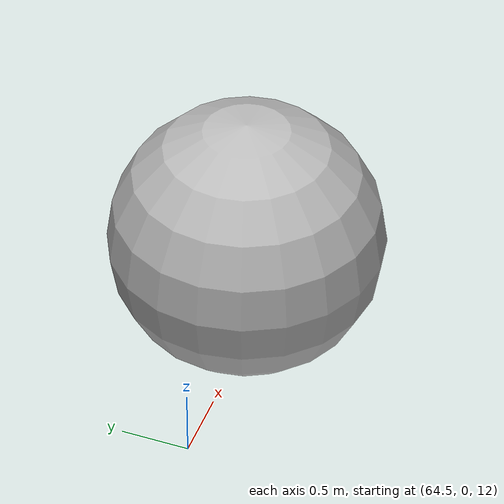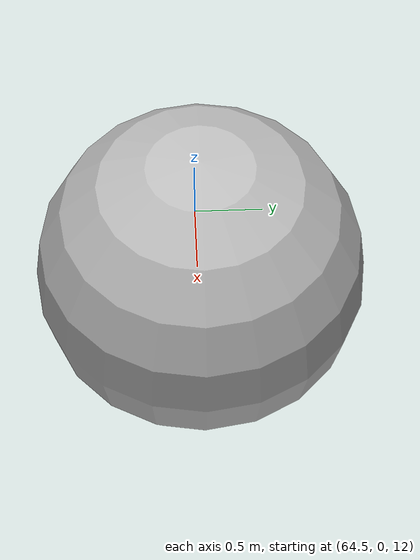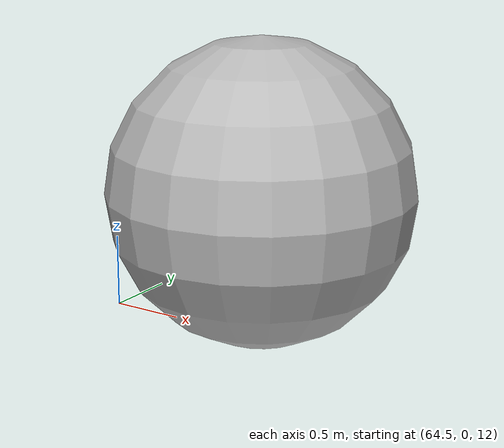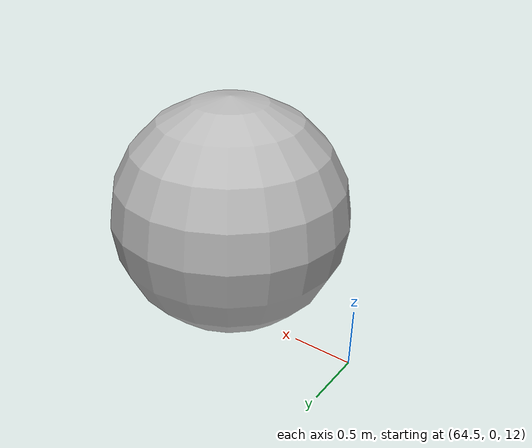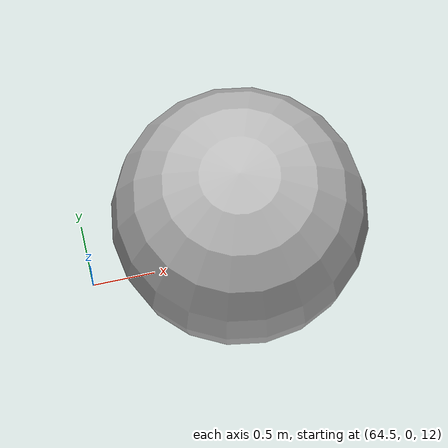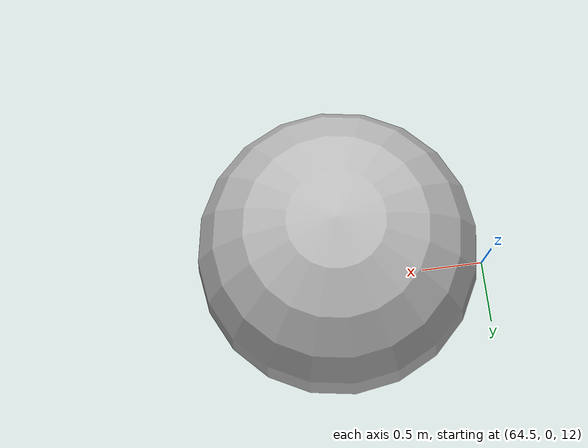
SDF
<?xml version="1.0" ?>

<sdf version="1.7">
  <world name="Garden">
    <!-- gravity of the moon -->
    <gravity>0 0 -1.62</gravity>

    <scene>
      <ambient>0.0 0.0 0.0 0.0</ambient>
      <background>0.0 0.0 0.0 1.0</background>
      <grid>false</grid>
    </scene>

    <plugin
      filename="gz-sim-physics-system"
      name="gz::sim::systems::Physics">
    </plugin>
    <plugin
      filename="gz-sim-sensors-system"
      name="gz::sim::systems::Sensors">
      <render_engine>ogre2</render_engine>
    </plugin>
    <plugin
      filename="gz-sim-user-commands-system"
      name="gz::sim::systems::UserCommands">
    </plugin>
    <plugin
      filename="gz-sim-scene-broadcaster-system"
      name="gz::sim::systems::SceneBroadcaster">
    </plugin>

    <gui fullscreen="0">
      <!-- 3D scene -->
      <plugin filename="MinimalScene" name="3D View">
        <gz-gui>
          <title>3D View</title>
          <property type="bool" key="showTitleBar">false</property>
          <property type="string" key="state">docked</property>
        </gz-gui>

        <engine>ogre2</engine>
        <scene>scene</scene>
        <ambient_light>0.0 0.0 0.0</ambient_light>
        <background_color>0.0 0.0 0.0</background_color>
        <camera_pose>-122.595329 247.122665 140.111526 0 0.570824 -1.096719</camera_pose>
        <camera_clip>
          <near>0.25</near>
          <far>1000000</far>
        </camera_clip>
      </plugin>

      <!-- Plugins that add functionality to the scene -->
      <plugin filename="EntityContextMenuPlugin" name="Entity context menu">
        <gz-gui>
          <property key="state" type="string">floating</property>
          <property key="width" type="double">5</property>
          <property key="height" type="double">5</property>
          <property key="showTitleBar" type="bool">false</property>
        </gz-gui>
      </plugin>
      <plugin filename="GzSceneManager" name="Scene Manager">
        <gz-gui>
          <property key="resizable" type="bool">false</property>
          <property key="width" type="double">5</property>
          <property key="height" type="double">5</property>
          <property key="state" type="string">floating</property>
          <property key="showTitleBar" type="bool">false</property>
        </gz-gui>
      </plugin>
      <plugin filename="InteractiveViewControl" name="Interactive view control">
        <gz-gui>
          <property key="resizable" type="bool">false</property>
          <property key="width" type="double">5</property>
          <property key="height" type="double">5</property>
          <property key="state" type="string">floating</property>
          <property key="showTitleBar" type="bool">false</property>
        </gz-gui>
      </plugin>
      <plugin filename="CameraTracking" name="Camera Tracking">
        <gz-gui>
          <property key="resizable" type="bool">false</property>
          <property key="width" type="double">5</property>
          <property key="height" type="double">5</property>
          <property key="state" type="string">floating</property>
          <property key="showTitleBar" type="bool">false</property>
        </gz-gui>
      </plugin>
      <plugin filename="MarkerManager" name="Marker manager">
        <gz-gui>
          <property key="resizable" type="bool">false</property>
          <property key="width" type="double">5</property>
          <property key="height" type="double">5</property>
          <property key="state" type="string">floating</property>
          <property key="showTitleBar" type="bool">false</property>
        </gz-gui>
      </plugin>
      <plugin filename="SelectEntities" name="Select Entities">
        <gz-gui>
          <anchors target="Select entities">
            <line own="right" target="right"/>
            <line own="top" target="top"/>
          </anchors>
          <property key="resizable" type="bool">false</property>
          <property key="width" type="double">5</property>
          <property key="height" type="double">5</property>
          <property key="state" type="string">floating</property>
          <property key="showTitleBar" type="bool">false</property>
        </gz-gui>
      </plugin>
      <plugin filename="VisualizationCapabilities" name="Visualization Capabilities">
        <gz-gui>
          <property key="resizable" type="bool">false</property>
          <property key="width" type="double">5</property>
          <property key="height" type="double">5</property>
          <property key="state" type="string">floating</property>
          <property key="showTitleBar" type="bool">false</property>
        </gz-gui>
      </plugin>

      <plugin filename="Spawn" name="Spawn Entities">
        <gz-gui>
          <anchors target="Select entities">
            <line own="right" target="right"/>
            <line own="top" target="top"/>
          </anchors>
          <property key="resizable" type="bool">false</property>
          <property key="width" type="double">5</property>
          <property key="height" type="double">5</property>
          <property key="state" type="string">floating</property>
          <property key="showTitleBar" type="bool">false</property>
        </gz-gui>
      </plugin>

      <!-- World control -->
      <plugin filename="WorldControl" name="World control">
        <gz-gui>
          <title>World control</title>
          <property type="bool" key="showTitleBar">false</property>
          <property type="bool" key="resizable">false</property>
          <property type="double" key="height">72</property>
          <property type="double" key="width">121</property>
          <property type="double" key="z">1</property>

          <property type="string" key="state">floating</property>
          <anchors target="3D View">
            <line own="left" target="left"/>
            <line own="bottom" target="bottom"/>
          </anchors>
        </gz-gui>

        <play_pause>true</play_pause>
        <step>true</step>
        <start_paused>true</start_paused>
        <use_event>true</use_event>

      </plugin>

      <!-- World statistics -->
      <plugin filename="WorldStats" name="World stats">
        <gz-gui>
          <title>World stats</title>
          <property type="bool" key="showTitleBar">false</property>
          <property type="bool" key="resizable">false</property>
          <property type="double" key="height">110</property>
          <property type="double" key="width">290</property>
          <property type="double" key="z">1</property>

          <property type="string" key="state">floating</property>
          <anchors target="3D View">
            <line own="right" target="right"/>
            <line own="bottom" target="bottom"/>
          </anchors>
        </gz-gui>

        <sim_time>true</sim_time>
        <real_time>true</real_time>
        <real_time_factor>true</real_time_factor>
        <iterations>true</iterations>
      </plugin>

      <!-- Insert simple shapes -->
      <plugin filename="Shapes" name="Shapes">
        <gz-gui>
          <property key="resizable" type="bool">false</property>
          <property key="x" type="double">0</property>
          <property key="y" type="double">0</property>
          <property key="width" type="double">250</property>
          <property key="height" type="double">50</property>
          <property key="state" type="string">floating</property>
          <property key="showTitleBar" type="bool">false</property>
          <property key="cardBackground" type="string">#666666</property>
        </gz-gui>
      </plugin>

      <!-- Insert lights -->
      <plugin filename="Lights" name="Lights">
        <gz-gui>
          <property key="resizable" type="bool">false</property>
          <property key="x" type="double">250</property>
          <property key="y" type="double">0</property>
          <property key="width" type="double">150</property>
          <property key="height" type="double">50</property>
          <property key="state" type="string">floating</property>
          <property key="showTitleBar" type="bool">false</property>
          <property key="cardBackground" type="string">#666666</property>
        </gz-gui>
      </plugin>

      <!-- Translate / rotate -->
      <plugin filename="TransformControl" name="Transform control">
        <gz-gui>
          <property key="resizable" type="bool">false</property>
          <property key="x" type="double">0</property>
          <property key="y" type="double">50</property>
          <property key="width" type="double">250</property>
          <property key="height" type="double">50</property>
          <property key="state" type="string">floating</property>
          <property key="showTitleBar" type="bool">false</property>
          <property key="cardBackground" type="string">#777777</property>
        </gz-gui>
      </plugin>

      <!-- Screenshot -->
      <plugin filename="Screenshot" name="Screenshot">
        <gz-gui>
          <property key="resizable" type="bool">false</property>
          <property key="x" type="double">250</property>
          <property key="y" type="double">50</property>
          <property key="width" type="double">50</property>
          <property key="height" type="double">50</property>
          <property key="state" type="string">floating</property>
          <property key="showTitleBar" type="bool">false</property>
          <property key="cardBackground" type="string">#777777</property>
        </gz-gui>
      </plugin>

      <!-- Video recorder -->
      <plugin filename="VideoRecorder" name="VideoRecorder">
        <gz-gui>
          <property key="resizable" type="bool">false</property>
          <property key="x" type="double">300</property>
          <property key="y" type="double">50</property>
          <property key="width" type="double">50</property>
          <property key="height" type="double">50</property>
          <property key="state" type="string">floating</property>
          <property key="showTitleBar" type="bool">false</property>
          <property key="cardBackground" type="string">#777777</property>
        </gz-gui>

        <record_video>
          <use_sim_time>true</use_sim_time>
          <lockstep>true</lockstep>
          <bitrate>4000000</bitrate>
        </record_video>
      </plugin>

      <plugin filename="KeyPublisher" name="Key publisher">
        <gz-gui>
          <anchors target="3D View">
            <line own="right" target="right"/>
            <line own="top" target="top"/>
          </anchors>
          <property key="resizable" type="bool">false</property>
          <property key="width" type="double">5</property>
          <property key="height" type="double">5</property>
          <property key="state" type="string">floating</property>
          <property key="showTitleBar" type="bool">false</property>
        </gz-gui>
      </plugin>
    </gui>

    <light type="directional" name="sun">
      <cast_shadows>true</cast_shadows>
      <pose>0 0 10 0 0 0</pose>
      <diffuse>0.8 0.8 0.8 1</diffuse>
      <specular>0.05 0.05 0.05 1</specular>
      <direction>-1 0.0 -0.4</direction>
      <visualize>false</visualize>
    </light>

    <light type="spot" name="dome_light">
      <cast_shadows>false</cast_shadows>
      <pose>0 0 50 0 0 0</pose>
      <diffuse>0.8 0.8 0.8 1</diffuse>
      <specular>0.8 0.8 0.8 1</specular>
      <attenuation>
        <range>110</range>
        <constant>0.0</constant>
        <linear>0.001</linear>
        <quadratic>0.0001</quadratic>
      </attenuation>
      <spot>
        <inner_angle>2.9</inner_angle>
        <outer_angle>3.1</outer_angle>
        <falloff>0.0</falloff>
      </spot>
      <direction>0 0.0 -1</direction>
      <visualize>false</visualize>
    </light>

    <light type="spot" name="dome_light_01">
      <cast_shadows>false</cast_shadows>
      <pose>0 45 30 0 0 0</pose>
      <diffuse>0.8 0.8 0.8 1</diffuse>
      <specular>0.8 0.8 0.8 1</specular>
      <attenuation>
        <range>70</range>
        <constant>0.2</constant>
        <linear>0.017</linear>
        <quadratic>0.0001</quadratic>
      </attenuation>
      <spot>
        <inner_angle>2.0</inner_angle>
        <outer_angle>2.5</outer_angle>
        <falloff>0.6</falloff>
      </spot>
      <direction>0 0.0 -1</direction>
      <visualize>false</visualize>
    </light>

    <light type="spot" name="dome_light_02">
      <cast_shadows>false</cast_shadows>
      <pose>0 -45 30 0 0 0</pose>
      <diffuse>0.8 0.8 0.8 1</diffuse>
      <specular>0.8 0.8 0.8 1</specular>
      <attenuation>
        <range>70</range>
        <constant>0.2</constant>
        <linear>0.017</linear>
        <quadratic>0.0001</quadratic>
      </attenuation>
      <spot>
        <inner_angle>2.0</inner_angle>
        <outer_angle>2.5</outer_angle>
        <falloff>0.6</falloff>
      </spot>
      <direction>0 0.0 -1</direction>
      <visualize>false</visualize>
    </light>

    <light type="spot" name="dome_light_03">
      <cast_shadows>false</cast_shadows>
      <pose>45 0 30 0 0 0</pose>
      <diffuse>0.8 0.8 0.8 1</diffuse>
      <specular>0.8 0.8 0.8 1</specular>
      <attenuation>
        <range>70</range>
        <constant>0.2</constant>
        <linear>0.017</linear>
        <quadratic>0.0001</quadratic>
      </attenuation>
      <spot>
        <inner_angle>2.0</inner_angle>
        <outer_angle>2.5</outer_angle>
        <falloff>0.6</falloff>
      </spot>
      <direction>0 0.0 -1</direction>
      <visualize>false</visualize>
    </light>

    <light type="spot" name="dome_light_04">
      <cast_shadows>false</cast_shadows>
      <pose>-45 0 30 0 0 0</pose>
      <diffuse>0.8 0.8 0.8 1</diffuse>
      <specular>0.8 0.8 0.8 1</specular>
      <attenuation>
        <range>70</range>
        <constant>0.2</constant>
        <linear>0.017</linear>
        <quadratic>0.0001</quadratic>
      </attenuation>
      <spot>
        <inner_angle>2.0</inner_angle>
        <outer_angle>2.5</outer_angle>
        <falloff>0.6</falloff>
      </spot>
      <direction>0 0.0 -1</direction>
      <visualize>false</visualize>
    </light>

    <light type="spot" name="tunnel_light_01">
      <cast_shadows>false</cast_shadows>
      <pose>0.2841 98.4191 10 0 0 0</pose>
      <diffuse>0.8 0.8 0.8 1</diffuse>
      <specular>0.8 0.8 0.8 1</specular>
      <attenuation>
        <range>10</range>
        <constant>0.2</constant>
        <linear>0.2517</linear>
        <quadratic>0.0001</quadratic>
      </attenuation>
      <spot>
        <inner_angle>0.0</inner_angle>
        <outer_angle>2.5</outer_angle>
        <falloff>0.6</falloff>
      </spot>
      <direction>0 0.0 -1</direction>
      <visualize>false</visualize>
    </light>

    <light type="spot" name="tunnel_light_02">
      <cast_shadows>false</cast_shadows>
      <pose>-0.0615 110.8810 7.8431 0 0 0</pose>
      <diffuse>0.8 0.8 0.8 1</diffuse>
      <specular>0.8 0.8 0.8 1</specular>
      <attenuation>
        <range>8</range>
        <constant>0.2</constant>
        <linear>0.2517</linear>
        <quadratic>0.0001</quadratic>
      </attenuation>
      <spot>
        <inner_angle>0.0</inner_angle>
        <outer_angle>2.5</outer_angle>
        <falloff>0.6</falloff>
      </spot>
      <direction>0 0.0 -1</direction>
      <visualize>false</visualize>
    </light>

    <include>
  <uri>model://ground_plane</uri>
  <name>custom_ground_plane</name>
  <pose>0 0 0 0 0 0</pose>
  <link name="link">
    <visual name="visual">
      <geometry>
        <plane>
          <normal>0 0 1</normal>
          <size>2000 2000</size> <!-- Adjust the size to fit your needs -->
        </plane>
      </geometry>
      <material>
        <script>
          <!-- Set the texture file -->
          <uri>/home/mikolaj/ws_mobile/src/mobile_robot/model/Materials/Moon_ground.jpeg</uri>
        </script>
      </material>
    </visual>
  </link>
</include>

    <plugin
      filename="gz-sim-wind-effects-system"
      name="gz::sim::systems::WindEffects">
      <force_approximation_scaling_factor>
        <when zgt="8.0" zlt="60.0" xlt="69.865" xgt="61.535" ylt="4.165" ygt="-4.165">
          <k>0.9</k>
          <rz>0 0 -0.019 1.14</rz>
        </when>
        <when zgt="8.0" zlt="60.0" xlt="69.865" xgt="61.535" yle="-4.165">0</when>
        <when zgt="8.0" zlt="60.0" xlt="69.865" xgt="61.535" yge="4.165">0</when>
        <when zgt="8.0" zlt="60.0" xge="69.865">0</when>
        <when zgt="8.0" zlt="60.0" xle="4.165">0</when>
        <when zge="60.0">0</when>
        <when zle="8.0">0</when>
      </force_approximation_scaling_factor>
      <vertical>
        <time_for_rise>1</time_for_rise>
        <noise type="gaussian">
          <stddev>2</stddev>
        </noise>
      </vertical>
    </plugin>
    <wind>
      <linear_velocity>0 0 2</linear_velocity>
    </wind>

    <model name="Ball">
      <pose>65.7 0 13 0 0 0</pose>
      <link name="link">
        <enable_wind>1</enable_wind>
        <inertial>
          <mass>1</mass>
          <inertia>
            <ixx>0.666666</ixx>
            <ixy>0</ixy>
            <ixz>0</ixz>
            <iyy>0.666666</iyy>
            <iyz>0</iyz>
            <izz>0.666666</izz>
          </inertia>
        </inertial>
        <collision name="collision">
          <geometry>
            <sphere>
              <radius>1</radius>
            </sphere>
          </geometry>
        </collision>
        <visual name="visual">
          <geometry>
            <sphere>
              <radius>1</radius>
            </sphere>
          </geometry>
        </visual>
      </link>
    </model>

  </world>
</sdf>
